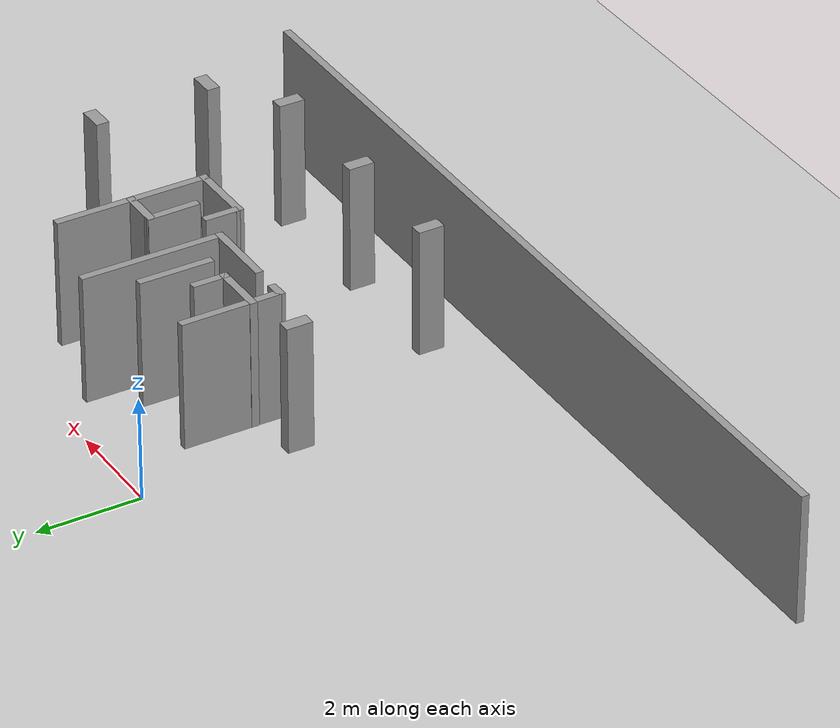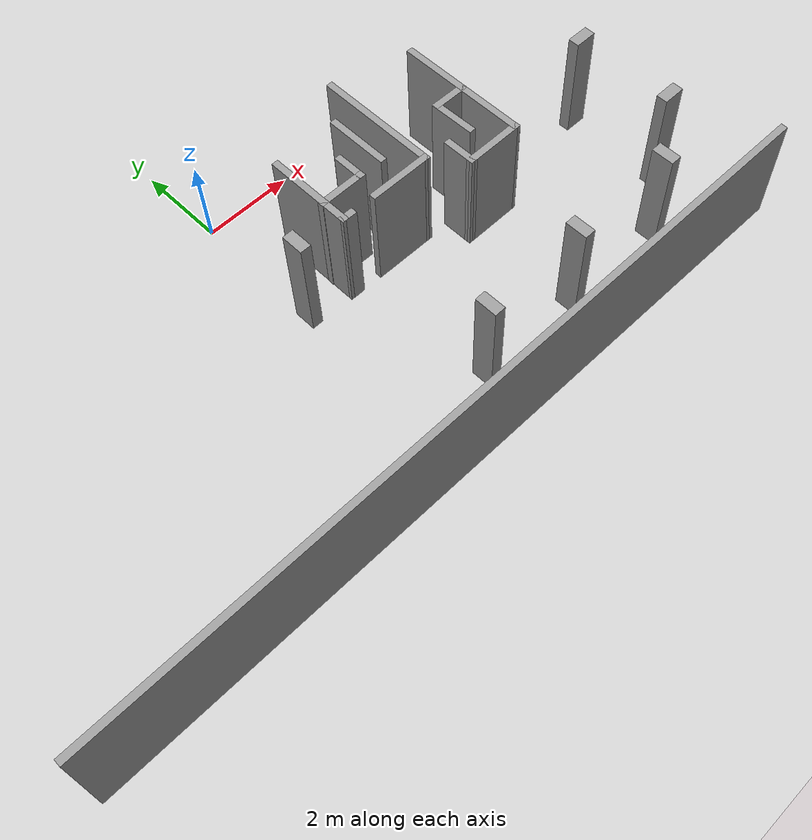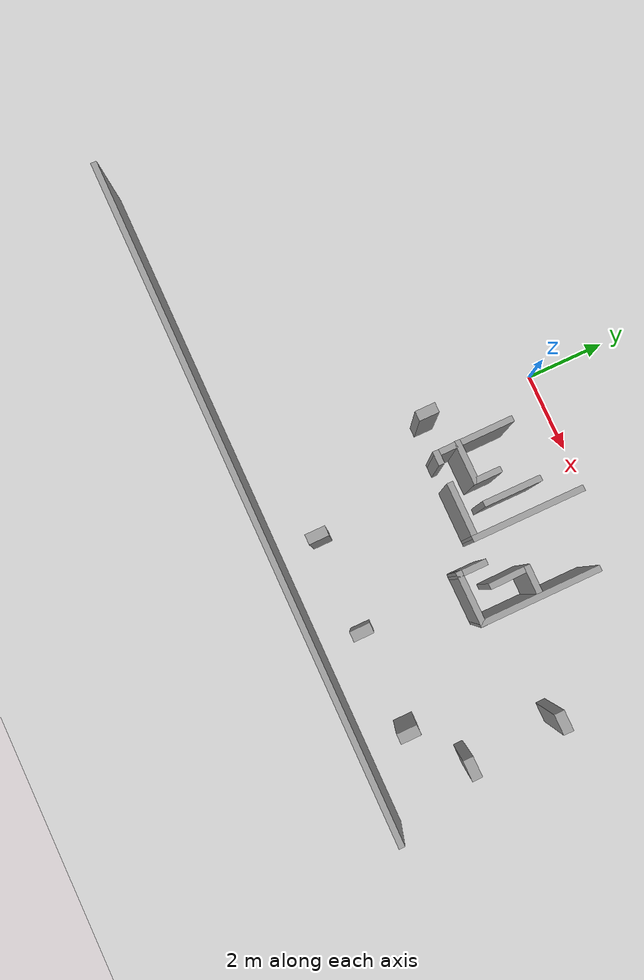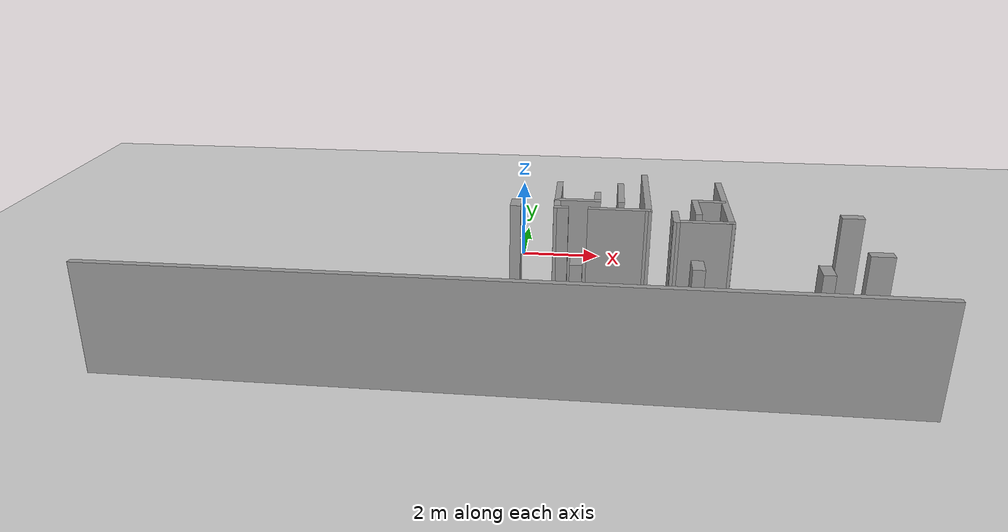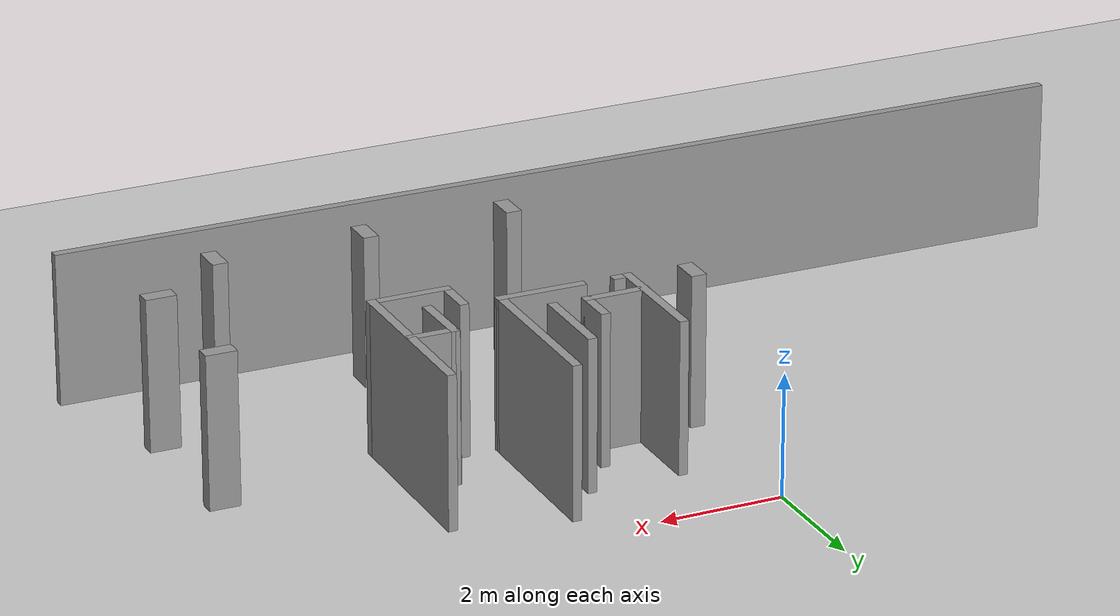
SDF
<sdf version="1.7">
 <world name="default">
  <model name="ground_plane">
   <static>1</static>
   <link name="link">
    <collision name="collision">
     <geometry><plane><normal>0 0 1</normal><size>100 100</size></plane></geometry>
     <surface><friction><ode><mu>100</mu><mu2>50</mu2></ode></friction></surface>
    </collision>
    <visual name="visual">
     <cast_shadows>0</cast_shadows>
     <geometry><plane><normal>0 0 1</normal><size>100 100</size></plane></geometry>
     <material>
      <script><uri>file://media/materials/scripts/gazebo.material</uri><name>Gazebo/Grey</name></script>
     </material>
    </visual>
   </link>
  </model>
  <model name="Level1">
   <link name="Wall_102">
    <pose>0.994248 -2.32572 0 0 0 -1.56872</pose>
    <visual name="Wall_102_Visual">
     <pose>0 0 1.25 0 -0 0</pose>
     <geometry><box><size>1.99145 0.15 2.5</size></box></geometry>
     <material>
      <script><uri>file://media/materials/scripts/gazebo.material</uri><name>Gazebo/Grey</name></script>
      <ambient>1 1 1 1</ambient>
      <shader type="pixel"/>
     </material>
     <meta><layer>0</layer></meta>
    </visual>
    <collision name="Wall_102_Collision">
     <pose>0 0 1.25 0 -0 0</pose>
     <geometry><box><size>1.99145 0.15 2.5</size></box></geometry>
     <surface>
      <friction>
       <ode><mu>1</mu><mu2>1</mu2><fdir1>0 0 0</fdir1><slip1>0</slip1><slip2>0</slip2></ode>
       <torsional>
        <coefficient>1</coefficient>
        <patch_radius>0</patch_radius>
        <surface_radius>0</surface_radius>
        <use_patch_radius>1</use_patch_radius>
        <ode><slip>0</slip></ode>
       </torsional>
      </friction>
      <bounce><restitution_coefficient>0</restitution_coefficient><threshold>1e+06</threshold></bounce>
      <contact>
       <collide_without_contact>0</collide_without_contact>
       <collide_without_contact_bitmask>1</collide_without_contact_bitmask>
       <collide_bitmask>1</collide_bitmask>
       <ode>
        <soft_cfm>0</soft_cfm>
        <soft_erp>0.2</soft_erp>
        <kp>1e+13</kp>
        <kd>1</kd>
        <max_vel>0.01</max_vel>
        <min_depth>0</min_depth>
       </ode>
       <bullet>
        <split_impulse>1</split_impulse>
        <split_impulse_penetration_threshold>-0.01</split_impulse_penetration_threshold>
        <soft_cfm>0</soft_cfm>
        <soft_erp>0.2</soft_erp>
        <kp>1e+13</kp>
        <kd>1</kd>
       </bullet>
      </contact>
     </surface>
    </collision>
   </link>
   <link name="Wall_103">
    <pose>1.09496 -3.24734 0 0 0 -0.009371</pose>
    <visual name="Wall_103_Visual">
     <pose>0 0 1.25 0 -0 0</pose>
     <geometry><box><size>0.347613 0.15 2.5</size></box></geometry>
     <material>
      <script><uri>file://media/materials/scripts/gazebo.material</uri><name>Gazebo/Grey</name></script>
      <ambient>1 1 1 1</ambient>
      <shader type="pixel"/>
     </material>
     <meta><layer>0</layer></meta>
    </visual>
    <collision name="Wall_103_Collision">
     <pose>0 0 1.25 0 -0 0</pose>
     <geometry><box><size>0.347613 0.15 2.5</size></box></geometry>
     <surface>
      <friction>
       <ode><mu>1</mu><mu2>1</mu2><fdir1>0 0 0</fdir1><slip1>0</slip1><slip2>0</slip2></ode>
       <torsional>
        <coefficient>1</coefficient>
        <patch_radius>0</patch_radius>
        <surface_radius>0</surface_radius>
        <use_patch_radius>1</use_patch_radius>
        <ode><slip>0</slip></ode>
       </torsional>
      </friction>
      <bounce><restitution_coefficient>0</restitution_coefficient><threshold>1e+06</threshold></bounce>
      <contact>
       <collide_without_contact>0</collide_without_contact>
       <collide_without_contact_bitmask>1</collide_without_contact_bitmask>
       <collide_bitmask>1</collide_bitmask>
       <ode>
        <soft_cfm>0</soft_cfm>
        <soft_erp>0.2</soft_erp>
        <kp>1e+13</kp>
        <kd>1</kd>
        <max_vel>0.01</max_vel>
        <min_depth>0</min_depth>
       </ode>
       <bullet>
        <split_impulse>1</split_impulse>
        <split_impulse_penetration_threshold>-0.01</split_impulse_penetration_threshold>
        <soft_cfm>0</soft_cfm>
        <soft_erp>0.2</soft_erp>
        <kp>1e+13</kp>
        <kd>1</kd>
       </bullet>
      </contact>
     </surface>
    </collision>
   </link>
   <link name="Wall_109">
    <pose>1.4559 -2.70636 0 0 -0 0</pose>
    <visual name="Wall_109_Visual">
     <pose>0 0 1.25 0 -0 0</pose>
     <geometry><box><size>1.08842 0.15 2.5</size></box></geometry>
     <material>
      <script><uri>file://media/materials/scripts/gazebo.material</uri><name>Gazebo/Grey</name></script>
      <ambient>1 1 1 1</ambient>
      <shader type="pixel"/>
     </material>
     <meta><layer>0</layer></meta>
    </visual>
    <collision name="Wall_109_Collision">
     <pose>0 0 1.25 0 -0 0</pose>
     <geometry><box><size>1.08842 0.15 2.5</size></box></geometry>
     <surface>
      <friction>
       <ode><mu>1</mu><mu2>1</mu2><fdir1>0 0 0</fdir1><slip1>0</slip1><slip2>0</slip2></ode>
       <torsional>
        <coefficient>1</coefficient>
        <patch_radius>0</patch_radius>
        <surface_radius>0</surface_radius>
        <use_patch_radius>1</use_patch_radius>
        <ode><slip>0</slip></ode>
       </torsional>
      </friction>
      <bounce><restitution_coefficient>0</restitution_coefficient><threshold>1e+06</threshold></bounce>
      <contact>
       <collide_without_contact>0</collide_without_contact>
       <collide_without_contact_bitmask>1</collide_without_contact_bitmask>
       <collide_bitmask>1</collide_bitmask>
       <ode>
        <soft_cfm>0</soft_cfm>
        <soft_erp>0.2</soft_erp>
        <kp>1e+13</kp>
        <kd>1</kd>
        <max_vel>0.01</max_vel>
        <min_depth>0</min_depth>
       </ode>
       <bullet>
        <split_impulse>1</split_impulse>
        <split_impulse_penetration_threshold>-0.01</split_impulse_penetration_threshold>
        <soft_cfm>0</soft_cfm>
        <soft_erp>0.2</soft_erp>
        <kp>1e+13</kp>
        <kd>1</kd>
       </bullet>
      </contact>
     </surface>
    </collision>
   </link>
   <link name="Wall_110">
    <pose>1.92511 -2.42346 0 0 -0 1.5708</pose>
    <visual name="Wall_110_Visual">
     <pose>0 0 1.25 0 -0 0</pose>
     <geometry><box><size>0.707254 0.15 2.5</size></box></geometry>
     <material>
      <script><uri>file://media/materials/scripts/gazebo.material</uri><name>Gazebo/Grey</name></script>
      <ambient>1 1 1 1</ambient>
      <shader type="pixel"/>
     </material>
     <meta><layer>0</layer></meta>
    </visual>
    <collision name="Wall_110_Collision">
     <pose>0 0 1.25 0 -0 0</pose>
     <geometry><box><size>0.707254 0.15 2.5</size></box></geometry>
     <surface>
      <friction>
       <ode><mu>1</mu><mu2>1</mu2><fdir1>0 0 0</fdir1><slip1>0</slip1><slip2>0</slip2></ode>
       <torsional>
        <coefficient>1</coefficient>
        <patch_radius>0</patch_radius>
        <surface_radius>0</surface_radius>
        <use_patch_radius>1</use_patch_radius>
        <ode><slip>0</slip></ode>
       </torsional>
      </friction>
      <bounce><restitution_coefficient>0</restitution_coefficient><threshold>1e+06</threshold></bounce>
      <contact>
       <collide_without_contact>0</collide_without_contact>
       <collide_without_contact_bitmask>1</collide_without_contact_bitmask>
       <collide_bitmask>1</collide_bitmask>
       <ode>
        <soft_cfm>0</soft_cfm>
        <soft_erp>0.2</soft_erp>
        <kp>1e+13</kp>
        <kd>1</kd>
        <max_vel>0.01</max_vel>
        <min_depth>0</min_depth>
       </ode>
       <bullet>
        <split_impulse>1</split_impulse>
        <split_impulse_penetration_threshold>-0.01</split_impulse_penetration_threshold>
        <soft_cfm>0</soft_cfm>
        <soft_erp>0.2</soft_erp>
        <kp>1e+13</kp>
        <kd>1</kd>
       </bullet>
      </contact>
     </surface>
    </collision>
   </link>
   <link name="Wall_112">
    <pose>2.43654 -3.26455 0 0 0 -0.005293</pose>
    <visual name="Wall_112_Visual">
     <pose>0 0 1.25 0 -0 0</pose>
     <geometry><box><size>1.4558 0.15 2.5</size></box></geometry>
     <material>
      <script><uri>file://media/materials/scripts/gazebo.material</uri><name>Gazebo/Grey</name></script>
      <ambient>1 1 1 1</ambient>
      <shader type="pixel"/>
     </material>
     <meta><layer>0</layer></meta>
    </visual>
    <collision name="Wall_112_Collision">
     <pose>0 0 1.25 0 -0 0</pose>
     <geometry><box><size>1.4558 0.15 2.5</size></box></geometry>
     <surface>
      <friction>
       <ode><mu>1</mu><mu2>1</mu2><fdir1>0 0 0</fdir1><slip1>0</slip1><slip2>0</slip2></ode>
       <torsional>
        <coefficient>1</coefficient>
        <patch_radius>0</patch_radius>
        <surface_radius>0</surface_radius>
        <use_patch_radius>1</use_patch_radius>
        <ode><slip>0</slip></ode>
       </torsional>
      </friction>
      <bounce><restitution_coefficient>0</restitution_coefficient><threshold>1e+06</threshold></bounce>
      <contact>
       <collide_without_contact>0</collide_without_contact>
       <collide_without_contact_bitmask>1</collide_without_contact_bitmask>
       <collide_bitmask>1</collide_bitmask>
       <ode>
        <soft_cfm>0</soft_cfm>
        <soft_erp>0.2</soft_erp>
        <kp>1e+13</kp>
        <kd>1</kd>
        <max_vel>0.01</max_vel>
        <min_depth>0</min_depth>
       </ode>
       <bullet>
        <split_impulse>1</split_impulse>
        <split_impulse_penetration_threshold>-0.01</split_impulse_penetration_threshold>
        <soft_cfm>0</soft_cfm>
        <soft_erp>0.2</soft_erp>
        <kp>1e+13</kp>
        <kd>1</kd>
       </bullet>
      </contact>
     </surface>
    </collision>
   </link>
   <link name="Wall_113">
    <pose>3.09186 -1.9509 0 0 -0 1.56895</pose>
    <visual name="Wall_113_Visual">
     <pose>0 0 1.25 0 -0 0</pose>
     <geometry><box><size>2.7842 0.15 2.5</size></box></geometry>
     <material>
      <script><uri>file://media/materials/scripts/gazebo.material</uri><name>Gazebo/Grey</name></script>
      <ambient>1 1 1 1</ambient>
      <shader type="pixel"/>
     </material>
     <meta><layer>0</layer></meta>
    </visual>
    <collision name="Wall_113_Collision">
     <pose>0 0 1.25 0 -0 0</pose>
     <geometry><box><size>2.7842 0.15 2.5</size></box></geometry>
     <surface>
      <friction>
       <ode><mu>1</mu><mu2>1</mu2><fdir1>0 0 0</fdir1><slip1>0</slip1><slip2>0</slip2></ode>
       <torsional>
        <coefficient>1</coefficient>
        <patch_radius>0</patch_radius>
        <surface_radius>0</surface_radius>
        <use_patch_radius>1</use_patch_radius>
        <ode><slip>0</slip></ode>
       </torsional>
      </friction>
      <bounce><restitution_coefficient>0</restitution_coefficient><threshold>1e+06</threshold></bounce>
      <contact>
       <collide_without_contact>0</collide_without_contact>
       <collide_without_contact_bitmask>1</collide_without_contact_bitmask>
       <collide_bitmask>1</collide_bitmask>
       <ode>
        <soft_cfm>0</soft_cfm>
        <soft_erp>0.2</soft_erp>
        <kp>1e+13</kp>
        <kd>1</kd>
        <max_vel>0.01</max_vel>
        <min_depth>0</min_depth>
       </ode>
       <bullet>
        <split_impulse>1</split_impulse>
        <split_impulse_penetration_threshold>-0.01</split_impulse_penetration_threshold>
        <soft_cfm>0</soft_cfm>
        <soft_erp>0.2</soft_erp>
        <kp>1e+13</kp>
        <kd>1</kd>
       </bullet>
      </contact>
     </surface>
    </collision>
   </link>
   <link name="Wall_117">
    <pose>2.48229 -2.05263 0 0 -0 1.56789</pose>
    <visual name="Wall_117_Visual">
     <pose>0 0 1.25 0 -0 0</pose>
     <geometry><box><size>1.43844 0.15 2.5</size></box></geometry>
     <material>
      <script><uri>file://media/materials/scripts/gazebo.material</uri><name>Gazebo/Grey</name></script>
      <ambient>1 1 1 1</ambient>
      <shader type="pixel"/>
     </material>
     <meta><layer>0</layer></meta>
    </visual>
    <collision name="Wall_117_Collision">
     <pose>0 0 1.25 0 -0 0</pose>
     <geometry><box><size>1.43844 0.15 2.5</size></box></geometry>
     <surface>
      <friction>
       <ode><mu>1</mu><mu2>1</mu2><fdir1>0 0 0</fdir1><slip1>0</slip1><slip2>0</slip2></ode>
       <torsional>
        <coefficient>1</coefficient>
        <patch_radius>0</patch_radius>
        <surface_radius>0</surface_radius>
        <use_patch_radius>1</use_patch_radius>
        <ode><slip>0</slip></ode>
       </torsional>
      </friction>
      <bounce><restitution_coefficient>0</restitution_coefficient><threshold>1e+06</threshold></bounce>
      <contact>
       <collide_without_contact>0</collide_without_contact>
       <collide_without_contact_bitmask>1</collide_without_contact_bitmask>
       <collide_bitmask>1</collide_bitmask>
       <ode>
        <soft_cfm>0</soft_cfm>
        <soft_erp>0.2</soft_erp>
        <kp>1e+13</kp>
        <kd>1</kd>
        <max_vel>0.01</max_vel>
        <min_depth>0</min_depth>
       </ode>
       <bullet>
        <split_impulse>1</split_impulse>
        <split_impulse_penetration_threshold>-0.01</split_impulse_penetration_threshold>
        <soft_cfm>0</soft_cfm>
        <soft_erp>0.2</soft_erp>
        <kp>1e+13</kp>
        <kd>1</kd>
       </bullet>
      </contact>
     </surface>
    </collision>
   </link>
   <link name="Wall_132">
    <pose>4.88082 -2.51232 0 0 0 -1.5708</pose>
    <visual name="Wall_132_Visual">
     <pose>0 0 1.25 0 -0 0</pose>
     <geometry><box><size>3 0.15 2.5</size></box></geometry>
     <material>
      <script><uri>file://media/materials/scripts/gazebo.material</uri><name>Gazebo/Grey</name></script>
      <ambient>1 1 1 1</ambient>
      <shader type="pixel"/>
     </material>
     <meta><layer>0</layer></meta>
    </visual>
    <collision name="Wall_132_Collision">
     <pose>0 0 1.25 0 -0 0</pose>
     <geometry><box><size>3 0.15 2.5</size></box></geometry>
     <surface>
      <friction>
       <ode><mu>1</mu><mu2>1</mu2><fdir1>0 0 0</fdir1><slip1>0</slip1><slip2>0</slip2></ode>
       <torsional>
        <coefficient>1</coefficient>
        <patch_radius>0</patch_radius>
        <surface_radius>0</surface_radius>
        <use_patch_radius>1</use_patch_radius>
        <ode><slip>0</slip></ode>
       </torsional>
      </friction>
      <bounce><restitution_coefficient>0</restitution_coefficient><threshold>1e+06</threshold></bounce>
      <contact>
       <collide_without_contact>0</collide_without_contact>
       <collide_without_contact_bitmask>1</collide_without_contact_bitmask>
       <collide_bitmask>1</collide_bitmask>
       <ode>
        <soft_cfm>0</soft_cfm>
        <soft_erp>0.2</soft_erp>
        <kp>1e+13</kp>
        <kd>1</kd>
        <max_vel>0.01</max_vel>
        <min_depth>0</min_depth>
       </ode>
       <bullet>
        <split_impulse>1</split_impulse>
        <split_impulse_penetration_threshold>-0.01</split_impulse_penetration_threshold>
        <soft_cfm>0</soft_cfm>
        <soft_erp>0.2</soft_erp>
        <kp>1e+13</kp>
        <kd>1</kd>
       </bullet>
      </contact>
     </surface>
    </collision>
   </link>
   <link name="Wall_133">
    <pose>4.2825 -3.93917 0 0 0 -3.13851</pose>
    <visual name="Wall_133_Visual">
     <pose>0 0 1.25 0 -0 0</pose>
     <geometry><box><size>1.35408 0.15 2.5</size></box></geometry>
     <material>
      <script><uri>file://media/materials/scripts/gazebo.material</uri><name>Gazebo/Grey</name></script>
      <ambient>1 1 1 1</ambient>
      <shader type="pixel"/>
     </material>
     <meta><layer>0</layer></meta>
    </visual>
    <collision name="Wall_133_Collision">
     <pose>0 0 1.25 0 -0 0</pose>
     <geometry><box><size>1.35408 0.15 2.5</size></box></geometry>
     <surface>
      <friction>
       <ode><mu>1</mu><mu2>1</mu2><fdir1>0 0 0</fdir1><slip1>0</slip1><slip2>0</slip2></ode>
       <torsional>
        <coefficient>1</coefficient>
        <patch_radius>0</patch_radius>
        <surface_radius>0</surface_radius>
        <use_patch_radius>1</use_patch_radius>
        <ode><slip>0</slip></ode>
       </torsional>
      </friction>
      <bounce><restitution_coefficient>0</restitution_coefficient><threshold>1e+06</threshold></bounce>
      <contact>
       <collide_without_contact>0</collide_without_contact>
       <collide_without_contact_bitmask>1</collide_without_contact_bitmask>
       <collide_bitmask>1</collide_bitmask>
       <ode>
        <soft_cfm>0</soft_cfm>
        <soft_erp>0.2</soft_erp>
        <kp>1e+13</kp>
        <kd>1</kd>
        <max_vel>0.01</max_vel>
        <min_depth>0</min_depth>
       </ode>
       <bullet>
        <split_impulse>1</split_impulse>
        <split_impulse_penetration_threshold>-0.01</split_impulse_penetration_threshold>
        <soft_cfm>0</soft_cfm>
        <soft_erp>0.2</soft_erp>
        <kp>1e+13</kp>
        <kd>1</kd>
       </bullet>
      </contact>
     </surface>
    </collision>
   </link>
   <link name="Wall_134">
    <pose>3.68046 -3.64103 0 0 -0 1.5708</pose>
    <visual name="Wall_134_Visual">
     <pose>0 0 1.25 0 -0 0</pose>
     <geometry><box><size>0.75 0.15 2.5</size></box></geometry>
     <material>
      <script><uri>file://media/materials/scripts/gazebo.material</uri><name>Gazebo/Grey</name></script>
      <ambient>1 1 1 1</ambient>
      <shader type="pixel"/>
     </material>
     <meta><layer>0</layer></meta>
    </visual>
    <collision name="Wall_134_Collision">
     <pose>0 0 1.25 0 -0 0</pose>
     <geometry><box><size>0.75 0.15 2.5</size></box></geometry>
     <surface>
      <friction>
       <ode><mu>1</mu><mu2>1</mu2><fdir1>0 0 0</fdir1><slip1>0</slip1><slip2>0</slip2></ode>
       <torsional>
        <coefficient>1</coefficient>
        <patch_radius>0</patch_radius>
        <surface_radius>0</surface_radius>
        <use_patch_radius>1</use_patch_radius>
        <ode><slip>0</slip></ode>
       </torsional>
      </friction>
      <bounce><restitution_coefficient>0</restitution_coefficient><threshold>1e+06</threshold></bounce>
      <contact>
       <collide_without_contact>0</collide_without_contact>
       <collide_without_contact_bitmask>1</collide_without_contact_bitmask>
       <collide_bitmask>1</collide_bitmask>
       <ode>
        <soft_cfm>0</soft_cfm>
        <soft_erp>0.2</soft_erp>
        <kp>1e+13</kp>
        <kd>1</kd>
        <max_vel>0.01</max_vel>
        <min_depth>0</min_depth>
       </ode>
       <bullet>
        <split_impulse>1</split_impulse>
        <split_impulse_penetration_threshold>-0.01</split_impulse_penetration_threshold>
        <soft_cfm>0</soft_cfm>
        <soft_erp>0.2</soft_erp>
        <kp>1e+13</kp>
        <kd>1</kd>
       </bullet>
      </contact>
     </surface>
    </collision>
   </link>
   <link name="Wall_136">
    <pose>4.20447 -2.93392 0 0 -0 1.58769</pose>
    <visual name="Wall_136_Visual">
     <pose>0 0 1.25 0 -0 0</pose>
     <geometry><box><size>1.03154 0.15 2.5</size></box></geometry>
     <material>
      <script><uri>file://media/materials/scripts/gazebo.material</uri><name>Gazebo/Grey</name></script>
      <ambient>1 1 1 1</ambient>
      <shader type="pixel"/>
     </material>
     <meta><layer>0</layer></meta>
    </visual>
    <collision name="Wall_136_Collision">
     <pose>0 0 1.25 0 -0 0</pose>
     <geometry><box><size>1.03154 0.15 2.5</size></box></geometry>
     <surface>
      <friction>
       <ode><mu>1</mu><mu2>1</mu2><fdir1>0 0 0</fdir1><slip1>0</slip1><slip2>0</slip2></ode>
       <torsional>
        <coefficient>1</coefficient>
        <patch_radius>0</patch_radius>
        <surface_radius>0</surface_radius>
        <use_patch_radius>1</use_patch_radius>
        <ode><slip>0</slip></ode>
       </torsional>
      </friction>
      <bounce><restitution_coefficient>0</restitution_coefficient><threshold>1e+06</threshold></bounce>
      <contact>
       <collide_without_contact>0</collide_without_contact>
       <collide_without_contact_bitmask>1</collide_without_contact_bitmask>
       <collide_bitmask>1</collide_bitmask>
       <ode>
        <soft_cfm>0</soft_cfm>
        <soft_erp>0.2</soft_erp>
        <kp>1e+13</kp>
        <kd>1</kd>
        <max_vel>0.01</max_vel>
        <min_depth>0</min_depth>
       </ode>
       <bullet>
        <split_impulse>1</split_impulse>
        <split_impulse_penetration_threshold>-0.01</split_impulse_penetration_threshold>
        <soft_cfm>0</soft_cfm>
        <soft_erp>0.2</soft_erp>
        <kp>1e+13</kp>
        <kd>1</kd>
       </bullet>
      </contact>
     </surface>
    </collision>
   </link>
   <link name="Wall_137">
    <pose>4.53496 -2.49547 0 0 0 -0.006797</pose>
    <visual name="Wall_137_Visual">
     <pose>0 0 1.25 0 -0 0</pose>
     <geometry><box><size>0.814571 0.15 2.5</size></box></geometry>
     <material>
      <script><uri>file://media/materials/scripts/gazebo.material</uri><name>Gazebo/Grey</name></script>
      <ambient>1 1 1 1</ambient>
      <shader type="pixel"/>
     </material>
     <meta><layer>0</layer></meta>
    </visual>
    <collision name="Wall_137_Collision">
     <pose>0 0 1.25 0 -0 0</pose>
     <geometry><box><size>0.814571 0.15 2.5</size></box></geometry>
     <surface>
      <friction>
       <ode><mu>1</mu><mu2>1</mu2><fdir1>0 0 0</fdir1><slip1>0</slip1><slip2>0</slip2></ode>
       <torsional>
        <coefficient>1</coefficient>
        <patch_radius>0</patch_radius>
        <surface_radius>0</surface_radius>
        <use_patch_radius>1</use_patch_radius>
        <ode><slip>0</slip></ode>
       </torsional>
      </friction>
      <bounce><restitution_coefficient>0</restitution_coefficient><threshold>1e+06</threshold></bounce>
      <contact>
       <collide_without_contact>0</collide_without_contact>
       <collide_without_contact_bitmask>1</collide_without_contact_bitmask>
       <collide_bitmask>1</collide_bitmask>
       <ode>
        <soft_cfm>0</soft_cfm>
        <soft_erp>0.2</soft_erp>
        <kp>1e+13</kp>
        <kd>1</kd>
        <max_vel>0.01</max_vel>
        <min_depth>0</min_depth>
       </ode>
       <bullet>
        <split_impulse>1</split_impulse>
        <split_impulse_penetration_threshold>-0.01</split_impulse_penetration_threshold>
        <soft_cfm>0</soft_cfm>
        <soft_erp>0.2</soft_erp>
        <kp>1e+13</kp>
        <kd>1</kd>
       </bullet>
      </contact>
     </surface>
    </collision>
   </link>
   <link name="Wall_147_clone_clone_16">
    <pose>0.037012 -3.03388 0 0 -0 1.5708</pose>
    <visual name="Wall_147_Visual">
     <pose>0 0 1.25 0 -0 0</pose>
     <geometry><box><size>0.5 0.25 2.5</size></box></geometry>
     <material>
      <script><uri>file://media/materials/scripts/gazebo.material</uri><name>Gazebo/Grey</name></script>
      <ambient>1 1 1 1</ambient>
      <shader type="pixel"/>
     </material>
     <meta><layer>0</layer></meta>
    </visual>
    <collision name="Wall_147_Collision">
     <pose>0 0 1.25 0 -0 0</pose>
     <geometry><box><size>0.5 0.25 2.5</size></box></geometry>
     <surface>
      <friction>
       <ode><mu>1</mu><mu2>1</mu2><fdir1>0 0 0</fdir1><slip1>0</slip1><slip2>0</slip2></ode>
       <torsional>
        <coefficient>1</coefficient>
        <patch_radius>0</patch_radius>
        <surface_radius>0</surface_radius>
        <use_patch_radius>1</use_patch_radius>
        <ode><slip>0</slip></ode>
       </torsional>
      </friction>
      <bounce><restitution_coefficient>0</restitution_coefficient><threshold>1e+06</threshold></bounce>
      <contact>
       <collide_without_contact>0</collide_without_contact>
       <collide_without_contact_bitmask>1</collide_without_contact_bitmask>
       <collide_bitmask>1</collide_bitmask>
       <ode>
        <soft_cfm>0</soft_cfm>
        <soft_erp>0.2</soft_erp>
        <kp>1e+13</kp>
        <kd>1</kd>
        <max_vel>0.01</max_vel>
        <min_depth>0</min_depth>
       </ode>
       <bullet>
        <split_impulse>1</split_impulse>
        <split_impulse_penetration_threshold>-0.01</split_impulse_penetration_threshold>
        <soft_cfm>0</soft_cfm>
        <soft_erp>0.2</soft_erp>
        <kp>1e+13</kp>
        <kd>1</kd>
       </bullet>
      </contact>
     </surface>
    </collision>
   </link>
   <link name="Wall_147_clone_clone_20">
    <pose>1.53077 -6.47737 0 0 -0 1.5708</pose>
    <visual name="Wall_147_Visual">
     <pose>0 0 1.25 0 -0 0</pose>
     <geometry><box><size>0.5 0.25 2.5</size></box></geometry>
     <material>
      <script><uri>file://media/materials/scripts/gazebo.material</uri><name>Gazebo/Grey</name></script>
      <ambient>1 1 1 1</ambient>
      <shader type="pixel"/>
     </material>
     <meta><layer>0</layer></meta>
    </visual>
    <collision name="Wall_147_Collision">
     <pose>0 0 1.25 0 -0 0</pose>
     <geometry><box><size>0.5 0.25 2.5</size></box></geometry>
     <surface>
      <friction>
       <ode><mu>1</mu><mu2>1</mu2><fdir1>0 0 0</fdir1><slip1>0</slip1><slip2>0</slip2></ode>
       <torsional>
        <coefficient>1</coefficient>
        <patch_radius>0</patch_radius>
        <surface_radius>0</surface_radius>
        <use_patch_radius>1</use_patch_radius>
        <ode><slip>0</slip></ode>
       </torsional>
      </friction>
      <bounce><restitution_coefficient>0</restitution_coefficient><threshold>1e+06</threshold></bounce>
      <contact>
       <collide_without_contact>0</collide_without_contact>
       <collide_without_contact_bitmask>1</collide_without_contact_bitmask>
       <collide_bitmask>1</collide_bitmask>
       <ode>
        <soft_cfm>0</soft_cfm>
        <soft_erp>0.2</soft_erp>
        <kp>1e+13</kp>
        <kd>1</kd>
        <max_vel>0.01</max_vel>
        <min_depth>0</min_depth>
       </ode>
       <bullet>
        <split_impulse>1</split_impulse>
        <split_impulse_penetration_threshold>-0.01</split_impulse_penetration_threshold>
        <soft_cfm>0</soft_cfm>
        <soft_erp>0.2</soft_erp>
        <kp>1e+13</kp>
        <kd>1</kd>
       </bullet>
      </contact>
     </surface>
    </collision>
   </link>
   <link name="Wall_147_clone_clone_21">
    <pose>3.92659 -6.47737 0 0 -0 1.5708</pose>
    <visual name="Wall_147_Visual">
     <pose>0 0 1.25 0 -0 0</pose>
     <geometry><box><size>0.5 0.25 2.5</size></box></geometry>
     <material>
      <script><uri>file://media/materials/scripts/gazebo.material</uri><name>Gazebo/Grey</name></script>
      <ambient>1 1 1 1</ambient>
      <shader type="pixel"/>
     </material>
     <meta><layer>0</layer></meta>
    </visual>
    <collision name="Wall_147_Collision">
     <pose>0 0 1.25 0 -0 0</pose>
     <geometry><box><size>0.5 0.25 2.5</size></box></geometry>
     <surface>
      <friction>
       <ode><mu>1</mu><mu2>1</mu2><fdir1>0 0 0</fdir1><slip1>0</slip1><slip2>0</slip2></ode>
       <torsional>
        <coefficient>1</coefficient>
        <patch_radius>0</patch_radius>
        <surface_radius>0</surface_radius>
        <use_patch_radius>1</use_patch_radius>
        <ode><slip>0</slip></ode>
       </torsional>
      </friction>
      <bounce><restitution_coefficient>0</restitution_coefficient><threshold>1e+06</threshold></bounce>
      <contact>
       <collide_without_contact>0</collide_without_contact>
       <collide_without_contact_bitmask>1</collide_without_contact_bitmask>
       <collide_bitmask>1</collide_bitmask>
       <ode>
        <soft_cfm>0</soft_cfm>
        <soft_erp>0.2</soft_erp>
        <kp>1e+13</kp>
        <kd>1</kd>
        <max_vel>0.01</max_vel>
        <min_depth>0</min_depth>
       </ode>
       <bullet>
        <split_impulse>1</split_impulse>
        <split_impulse_penetration_threshold>-0.01</split_impulse_penetration_threshold>
        <soft_cfm>0</soft_cfm>
        <soft_erp>0.2</soft_erp>
        <kp>1e+13</kp>
        <kd>1</kd>
       </bullet>
      </contact>
     </surface>
    </collision>
   </link>
   <link name="Wall_147_clone_clone_22">
    <pose>6.40311 -6.47737 0 0 -0 1.5708</pose>
    <visual name="Wall_147_Visual">
     <pose>0 0 1.25 0 -0 0</pose>
     <geometry><box><size>0.5 0.25 2.5</size></box></geometry>
     <material>
      <script><uri>file://media/materials/scripts/gazebo.material</uri><name>Gazebo/Grey</name></script>
      <ambient>1 1 1 1</ambient>
      <shader type="pixel"/>
     </material>
     <meta><layer>0</layer></meta>
    </visual>
    <collision name="Wall_147_Collision">
     <pose>0 0 1.25 0 -0 0</pose>
     <geometry><box><size>0.5 0.25 2.5</size></box></geometry>
     <surface>
      <friction>
       <ode><mu>1</mu><mu2>1</mu2><fdir1>0 0 0</fdir1><slip1>0</slip1><slip2>0</slip2></ode>
       <torsional>
        <coefficient>1</coefficient>
        <patch_radius>0</patch_radius>
        <surface_radius>0</surface_radius>
        <use_patch_radius>1</use_patch_radius>
        <ode><slip>0</slip></ode>
       </torsional>
      </friction>
      <bounce><restitution_coefficient>0</restitution_coefficient><threshold>1e+06</threshold></bounce>
      <contact>
       <collide_without_contact>0</collide_without_contact>
       <collide_without_contact_bitmask>1</collide_without_contact_bitmask>
       <collide_bitmask>1</collide_bitmask>
       <ode>
        <soft_cfm>0</soft_cfm>
        <soft_erp>0.2</soft_erp>
        <kp>1e+13</kp>
        <kd>1</kd>
        <max_vel>0.01</max_vel>
        <min_depth>0</min_depth>
       </ode>
       <bullet>
        <split_impulse>1</split_impulse>
        <split_impulse_penetration_threshold>-0.01</split_impulse_penetration_threshold>
        <soft_cfm>0</soft_cfm>
        <soft_erp>0.2</soft_erp>
        <kp>1e+13</kp>
        <kd>1</kd>
       </bullet>
      </contact>
     </surface>
    </collision>
   </link>
   <link name="Wall_147_clone_clone_23">
    <pose>7.6752 -5.51799 0 0 -0 4e-06</pose>
    <inertial>
     <mass>1</mass>
     <inertia><ixx>1</ixx><ixy>0</ixy><ixz>0</ixz><iyy>1</iyy><iyz>0</iyz><izz>1</izz></inertia>
    </inertial>
    <visual name="Wall_147_Visual">
     <pose>0 0 1.25 0 -0 0</pose>
     <geometry><box><size>0.5 0.25 2.5</size></box></geometry>
     <material>
      <script><uri>file://media/materials/scripts/gazebo.material</uri><name>Gazebo/Grey</name></script>
      <ambient>1 1 1 1</ambient>
      <shader type="pixel"><normal_map>__default__</normal_map></shader>
     </material>
     <meta><layer>0</layer></meta>
    </visual>
    <collision name="Wall_147_Collision">
     <pose>0 0 1.25 0 -0 0</pose>
     <geometry><box><size>0.5 0.25 2.5</size></box></geometry>
     <surface>
      <friction>
       <ode><mu>1</mu><mu2>1</mu2><fdir1>0 0 0</fdir1><slip1>0</slip1><slip2>0</slip2></ode>
       <torsional>
        <coefficient>1</coefficient>
        <patch_radius>0</patch_radius>
        <surface_radius>0</surface_radius>
        <use_patch_radius>1</use_patch_radius>
        <ode><slip>0</slip></ode>
       </torsional>
      </friction>
      <bounce><restitution_coefficient>0</restitution_coefficient><threshold>1e+06</threshold></bounce>
      <contact>
       <collide_without_contact>0</collide_without_contact>
       <collide_without_contact_bitmask>1</collide_without_contact_bitmask>
       <collide_bitmask>1</collide_bitmask>
       <ode>
        <soft_cfm>0</soft_cfm>
        <soft_erp>0.2</soft_erp>
        <kp>1e+13</kp>
        <kd>1</kd>
        <max_vel>0.01</max_vel>
        <min_depth>0</min_depth>
       </ode>
       <bullet>
        <split_impulse>1</split_impulse>
        <split_impulse_penetration_threshold>-0.01</split_impulse_penetration_threshold>
        <soft_cfm>0</soft_cfm>
        <soft_erp>0.2</soft_erp>
        <kp>1e+13</kp>
        <kd>1</kd>
       </bullet>
      </contact>
     </surface>
    </collision>
   </link>
   <link name="Wall_147_clone_clone_23_clone_0_clone">
    <pose>7.61389 -3.25238 0 0 -0 4e-06</pose>
    <inertial>
     <mass>1</mass>
     <inertia><ixx>1</ixx><ixy>0</ixy><ixz>0</ixz><iyy>1</iyy><iyz>0</iyz><izz>1</izz></inertia>
    </inertial>
    <visual name="Wall_147_Visual">
     <pose>0 0 1.25 0 -0 0</pose>
     <geometry><box><size>0.5 0.25 2.5</size></box></geometry>
     <material>
      <script><uri>file://media/materials/scripts/gazebo.material</uri><name>Gazebo/Grey</name></script>
      <ambient>1 1 1 1</ambient>
      <shader type="pixel"><normal_map>__default__</normal_map></shader>
     </material>
     <meta><layer>0</layer></meta>
    </visual>
    <collision name="Wall_147_Collision">
     <pose>0 0 1.25 0 -0 0</pose>
     <geometry><box><size>0.5 0.25 2.5</size></box></geometry>
     <surface>
      <friction>
       <ode><mu>1</mu><mu2>1</mu2><fdir1>0 0 0</fdir1><slip1>0</slip1><slip2>0</slip2></ode>
       <torsional>
        <coefficient>1</coefficient>
        <patch_radius>0</patch_radius>
        <surface_radius>0</surface_radius>
        <use_patch_radius>1</use_patch_radius>
        <ode><slip>0</slip></ode>
       </torsional>
      </friction>
      <bounce><restitution_coefficient>0</restitution_coefficient><threshold>1e+06</threshold></bounce>
      <contact>
       <collide_without_contact>0</collide_without_contact>
       <collide_without_contact_bitmask>1</collide_without_contact_bitmask>
       <collide_bitmask>1</collide_bitmask>
       <ode>
        <soft_cfm>0</soft_cfm>
        <soft_erp>0.2</soft_erp>
        <kp>1e+13</kp>
        <kd>1</kd>
        <max_vel>0.01</max_vel>
        <min_depth>0</min_depth>
       </ode>
       <bullet>
        <split_impulse>1</split_impulse>
        <split_impulse_penetration_threshold>-0.01</split_impulse_penetration_threshold>
        <soft_cfm>0</soft_cfm>
        <soft_erp>0.2</soft_erp>
        <kp>1e+13</kp>
        <kd>1</kd>
       </bullet>
      </contact>
     </surface>
    </collision>
   </link>
   <link name="Wall_5">
    <pose>0.018301 -7.60766 0 0 0 -0.005407</pose>
    <visual name="Wall_5_Visual">
     <pose>0 0 1.25 0 -0 0</pose>
     <geometry><box><size>17.0801 0.15 2.5</size></box></geometry>
     <material>
      <script><uri>file://media/materials/scripts/gazebo.material</uri><name>Gazebo/Grey</name></script>
      <ambient>1 1 1 1</ambient>
      <shader type="pixel"/>
     </material>
     <meta><layer>0</layer></meta>
    </visual>
    <collision name="Wall_5_Collision">
     <pose>0 0 1.25 0 -0 0</pose>
     <geometry><box><size>17.0801 0.15 2.5</size></box></geometry>
     <surface>
      <friction>
       <ode><mu>1</mu><mu2>1</mu2><fdir1>0 0 0</fdir1><slip1>0</slip1><slip2>0</slip2></ode>
       <torsional>
        <coefficient>1</coefficient>
        <patch_radius>0</patch_radius>
        <surface_radius>0</surface_radius>
        <use_patch_radius>1</use_patch_radius>
        <ode><slip>0</slip></ode>
       </torsional>
      </friction>
      <bounce><restitution_coefficient>0</restitution_coefficient><threshold>1e+06</threshold></bounce>
      <contact>
       <collide_without_contact>0</collide_without_contact>
       <collide_without_contact_bitmask>1</collide_without_contact_bitmask>
       <collide_bitmask>1</collide_bitmask>
       <ode>
        <soft_cfm>0</soft_cfm>
        <soft_erp>0.2</soft_erp>
        <kp>1e+13</kp>
        <kd>1</kd>
        <max_vel>0.01</max_vel>
        <min_depth>0</min_depth>
       </ode>
       <bullet>
        <split_impulse>1</split_impulse>
        <split_impulse_penetration_threshold>-0.01</split_impulse_penetration_threshold>
        <soft_cfm>0</soft_cfm>
        <soft_erp>0.2</soft_erp>
        <kp>1e+13</kp>
        <kd>1</kd>
       </bullet>
      </contact>
     </surface>
    </collision>
   </link>
   <static>1</static>
   <pose>-0.002726 0.011436 0 0 -0 0</pose>
  </model>
 </world>
</sdf>
